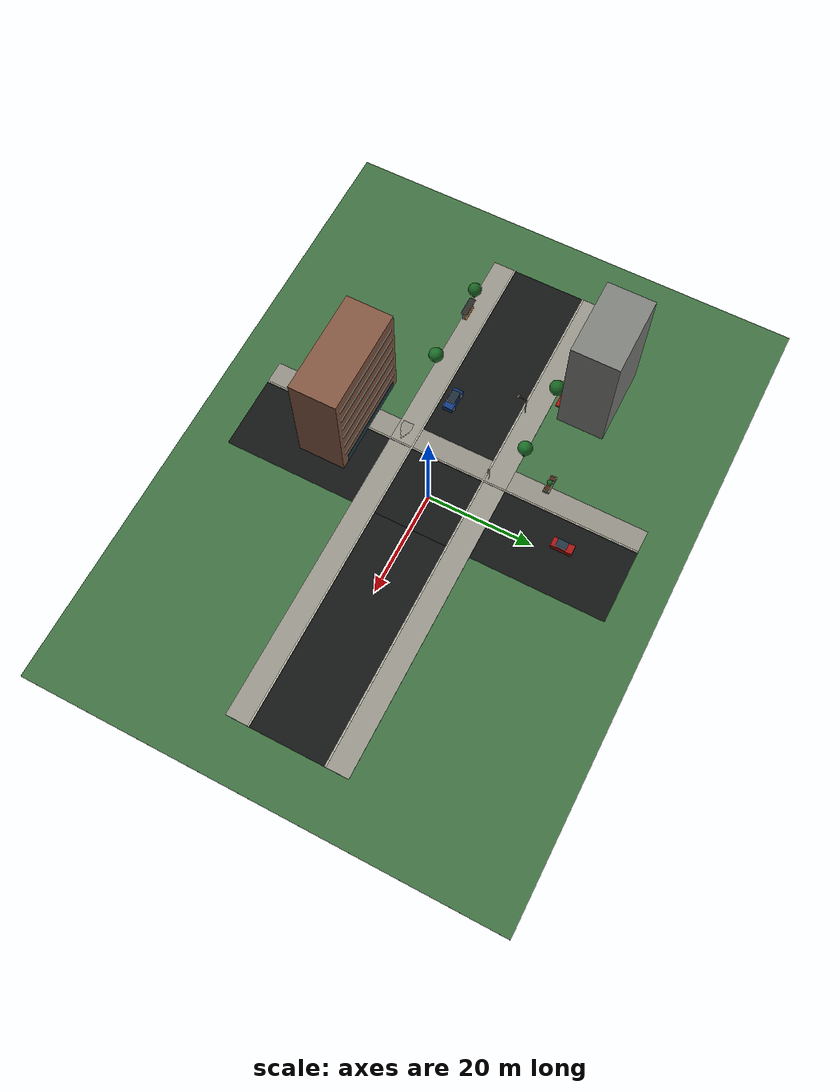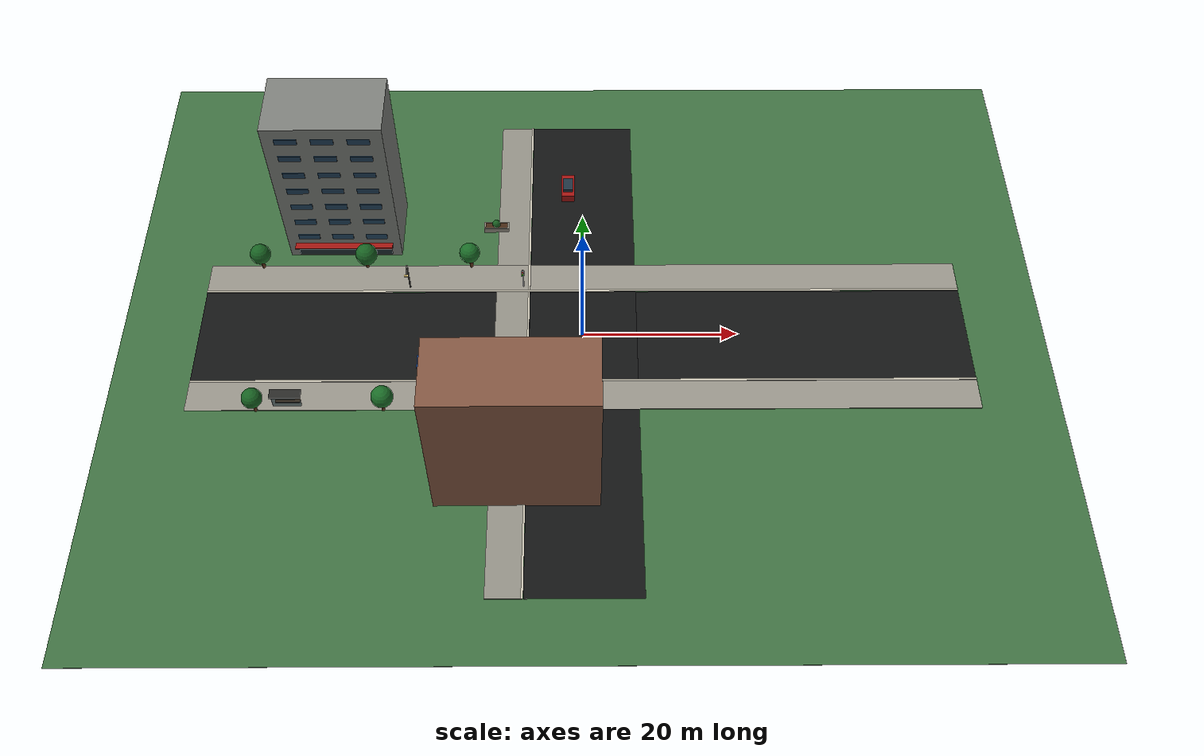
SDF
<sdf version="1.8">
 <world name="city_street">
  <model name="city_ground">
   <static>true</static>
   <link name="link">
    <collision name="ground_collision">
     <geometry><plane><normal>0 0 1</normal><size>120 90</size></plane></geometry>
     <surface><friction><ode><mu>0.9</mu><mu2>0.9</mu2></ode></friction></surface>
    </collision>
    <visual name="ground_visual">
     <pose>0 0 -0.012 0 0 0</pose>
     <geometry><box><size>120 90 0.024</size></box></geometry>
     <material>
      <ambient>0.21 0.34 0.22 1</ambient>
      <diffuse>0.24 0.43 0.25 1</diffuse>
      <specular>0.03 0.04 0.03 1</specular>
     </material>
    </visual>
   </link>
  </model>
  <model name="asphalt_main_road">
   <static>true</static>
   <link name="link">
    <visual name="asphalt">
     <geometry><box><size>100 14 0.006</size></box></geometry>
     <material>
      <ambient>0.055 0.058 0.060 1</ambient>
      <diffuse>0.075 0.078 0.080 1</diffuse>
      <specular>0.08 0.08 0.08 1</specular>
     </material>
    </visual>
   </link>
   <pose>0 0 -0.002 0 0 0</pose>
  </model>
  <model name="asphalt_cross_road">
   <static>true</static>
   <link name="link">
    <visual name="asphalt">
     <geometry><box><size>14 74 0.006</size></box></geometry>
     <material>
      <ambient>0.052 0.055 0.058 1</ambient>
      <diffuse>0.070 0.073 0.076 1</diffuse>
      <specular>0.08 0.08 0.08 1</specular>
     </material>
    </visual>
   </link>
   <pose>0 0 -0.001 0 0 0</pose>
  </model>
  <model name="north_sidewalk">
   <static>true</static>
   <link name="link">
    <collision name="collision"><geometry><box><size>100 4.2 0.12</size></box></geometry></collision>
    <visual name="concrete">
     <geometry><box><size>100 4.2 0.12</size></box></geometry>
     <material>
      <ambient>0.46 0.45 0.42 1</ambient>
      <diffuse>0.58 0.57 0.53 1</diffuse>
      <specular>0.08 0.08 0.07 1</specular>
     </material>
    </visual>
   </link>
   <pose>0 9.4 0.06 0 0 0</pose>
  </model>
  <model name="south_sidewalk">
   <static>true</static>
   <link name="link">
    <collision name="collision"><geometry><box><size>100 4.2 0.12</size></box></geometry></collision>
    <visual name="concrete">
     <geometry><box><size>100 4.2 0.12</size></box></geometry>
     <material>
      <ambient>0.46 0.45 0.42 1</ambient>
      <diffuse>0.58 0.57 0.53 1</diffuse>
      <specular>0.08 0.08 0.07 1</specular>
     </material>
    </visual>
   </link>
   <pose>0 -9.4 0.06 0 0 0</pose>
  </model>
  <model name="west_sidewalk">
   <static>true</static>
   <link name="link">
    <collision name="collision"><geometry><box><size>4.2 74 0.12</size></box></geometry></collision>
    <visual name="concrete">
     <geometry><box><size>4.2 74 0.12</size></box></geometry>
     <material>
      <ambient>0.45 0.44 0.41 1</ambient>
      <diffuse>0.56 0.55 0.51 1</diffuse>
      <specular>0.08 0.08 0.07 1</specular>
     </material>
    </visual>
   </link>
   <pose>-9.4 0 0.06 0 0 0</pose>
  </model>
  <model name="north_curb">
   <static>true</static>
   <link name="link">
    <collision name="collision"><geometry><box><size>100 0.28 0.18</size></box></geometry></collision>
    <visual name="curb">
     <geometry><box><size>100 0.28 0.18</size></box></geometry>
     <material><ambient>0.64 0.62 0.57 1</ambient><diffuse>0.76 0.74 0.68 1</diffuse></material>
    </visual>
   </link>
   <pose>0 7.16 0.09 0 0 0</pose>
  </model>
  <model name="south_curb">
   <static>true</static>
   <link name="link">
    <collision name="collision"><geometry><box><size>100 0.28 0.18</size></box></geometry></collision>
    <visual name="curb">
     <geometry><box><size>100 0.28 0.18</size></box></geometry>
     <material><ambient>0.64 0.62 0.57 1</ambient><diffuse>0.76 0.74 0.68 1</diffuse></material>
    </visual>
   </link>
   <pose>0 -7.16 0.09 0 0 0</pose>
  </model>
  <model name="west_curb">
   <static>true</static>
   <link name="link">
    <collision name="collision"><geometry><box><size>0.28 74 0.18</size></box></geometry></collision>
    <visual name="curb">
     <geometry><box><size>0.28 74 0.18</size></box></geometry>
     <material><ambient>0.64 0.62 0.57 1</ambient><diffuse>0.76 0.74 0.68 1</diffuse></material>
    </visual>
   </link>
   <pose>-7.16 0 0.09 0 0 0</pose>
  </model>
  <model name="north_west_office_tower">
   <static>true</static>
   <pose>-32 18 0 0 0 0</pose>
   <link name="link">
    <collision name="building_collision">
     <pose>0 0 12 0 0 0</pose>
     <geometry><box><size>15 9 24</size></box></geometry>
    </collision>
    <visual name="concrete_mass">
     <pose>0 0 12 0 0 0</pose>
     <geometry><box><size>15 9 24</size></box></geometry>
     <material>
      <ambient>0.36 0.37 0.36 1</ambient>
      <diffuse>0.48 0.49 0.47 1</diffuse>
      <specular>0.12 0.12 0.11 1</specular>
     </material>
    </visual>
    <visual name="front_glass_01">
     <pose>-4.5 -4.56 4 0 0 0</pose>
     <geometry><box><size>2.8 0.08 0.9</size></box></geometry>
     <material>
      <ambient>0.10 0.18 0.24 1</ambient>
      <diffuse>0.14 0.28 0.38 1</diffuse>
      <specular>0.65 0.72 0.78 1</specular>
     </material>
    </visual>
    <visual name="front_glass_02">
     <pose>0 -4.56 4 0 0 0</pose>
     <geometry><box><size>2.8 0.08 0.9</size></box></geometry>
     <material>
      <ambient>0.10 0.18 0.24 1</ambient>
      <diffuse>0.14 0.28 0.38 1</diffuse>
      <specular>0.65 0.72 0.78 1</specular>
     </material>
    </visual>
    <visual name="front_glass_03">
     <pose>4.5 -4.56 4 0 0 0</pose>
     <geometry><box><size>2.8 0.08 0.9</size></box></geometry>
     <material>
      <ambient>0.10 0.18 0.24 1</ambient>
      <diffuse>0.14 0.28 0.38 1</diffuse>
      <specular>0.65 0.72 0.78 1</specular>
     </material>
    </visual>
    <visual name="front_glass_04">
     <pose>-4.5 -4.56 7 0 0 0</pose>
     <geometry><box><size>2.8 0.08 0.9</size></box></geometry>
     <material>
      <ambient>0.09 0.17 0.23 1</ambient>
      <diffuse>0.13 0.26 0.36 1</diffuse>
      <specular>0.62 0.70 0.76 1</specular>
     </material>
    </visual>
    <visual name="front_glass_05">
     <pose>0 -4.56 7 0 0 0</pose>
     <geometry><box><size>2.8 0.08 0.9</size></box></geometry>
     <material>
      <ambient>0.09 0.17 0.23 1</ambient>
      <diffuse>0.13 0.26 0.36 1</diffuse>
      <specular>0.62 0.70 0.76 1</specular>
     </material>
    </visual>
    <visual name="front_glass_06">
     <pose>4.5 -4.56 7 0 0 0</pose>
     <geometry><box><size>2.8 0.08 0.9</size></box></geometry>
     <material>
      <ambient>0.09 0.17 0.23 1</ambient>
      <diffuse>0.13 0.26 0.36 1</diffuse>
      <specular>0.62 0.70 0.76 1</specular>
     </material>
    </visual>
    <visual name="front_glass_07">
     <pose>-4.5 -4.56 10 0 0 0</pose>
     <geometry><box><size>2.8 0.08 0.9</size></box></geometry>
     <material>
      <ambient>0.09 0.17 0.23 1</ambient>
      <diffuse>0.13 0.26 0.36 1</diffuse>
      <specular>0.62 0.70 0.76 1</specular>
     </material>
    </visual>
    <visual name="front_glass_08">
     <pose>0 -4.56 10 0 0 0</pose>
     <geometry><box><size>2.8 0.08 0.9</size></box></geometry>
     <material>
      <ambient>0.09 0.17 0.23 1</ambient>
      <diffuse>0.13 0.26 0.36 1</diffuse>
      <specular>0.62 0.70 0.76 1</specular>
     </material>
    </visual>
    <visual name="front_glass_09">
     <pose>4.5 -4.56 10 0 0 0</pose>
     <geometry><box><size>2.8 0.08 0.9</size></box></geometry>
     <material>
      <ambient>0.09 0.17 0.23 1</ambient>
      <diffuse>0.13 0.26 0.36 1</diffuse>
      <specular>0.62 0.70 0.76 1</specular>
     </material>
    </visual>
    <visual name="front_glass_10">
     <pose>-4.5 -4.56 13 0 0 0</pose>
     <geometry><box><size>2.8 0.08 0.9</size></box></geometry>
     <material>
      <ambient>0.08 0.16 0.22 1</ambient>
      <diffuse>0.12 0.24 0.34 1</diffuse>
      <specular>0.58 0.68 0.75 1</specular>
     </material>
    </visual>
    <visual name="front_glass_11">
     <pose>0 -4.56 13 0 0 0</pose>
     <geometry><box><size>2.8 0.08 0.9</size></box></geometry>
     <material>
      <ambient>0.08 0.16 0.22 1</ambient>
      <diffuse>0.12 0.24 0.34 1</diffuse>
      <specular>0.58 0.68 0.75 1</specular>
     </material>
    </visual>
    <visual name="front_glass_12">
     <pose>4.5 -4.56 13 0 0 0</pose>
     <geometry><box><size>2.8 0.08 0.9</size></box></geometry>
     <material>
      <ambient>0.08 0.16 0.22 1</ambient>
      <diffuse>0.12 0.24 0.34 1</diffuse>
      <specular>0.58 0.68 0.75 1</specular>
     </material>
    </visual>
    <visual name="front_glass_13">
     <pose>-4.5 -4.56 16 0 0 0</pose>
     <geometry><box><size>2.8 0.08 0.9</size></box></geometry>
     <material>
      <ambient>0.08 0.16 0.22 1</ambient>
      <diffuse>0.12 0.24 0.34 1</diffuse>
      <specular>0.58 0.68 0.75 1</specular>
     </material>
    </visual>
    <visual name="front_glass_14">
     <pose>0 -4.56 16 0 0 0</pose>
     <geometry><box><size>2.8 0.08 0.9</size></box></geometry>
     <material>
      <ambient>0.08 0.16 0.22 1</ambient>
      <diffuse>0.12 0.24 0.34 1</diffuse>
      <specular>0.58 0.68 0.75 1</specular>
     </material>
    </visual>
    <visual name="front_glass_15">
     <pose>4.5 -4.56 16 0 0 0</pose>
     <geometry><box><size>2.8 0.08 0.9</size></box></geometry>
     <material>
      <ambient>0.08 0.16 0.22 1</ambient>
      <diffuse>0.12 0.24 0.34 1</diffuse>
      <specular>0.58 0.68 0.75 1</specular>
     </material>
    </visual>
    <visual name="front_glass_16">
     <pose>-4.5 -4.56 19 0 0 0</pose>
     <geometry><box><size>2.8 0.08 0.9</size></box></geometry>
     <material>
      <ambient>0.08 0.16 0.22 1</ambient>
      <diffuse>0.12 0.24 0.34 1</diffuse>
      <specular>0.58 0.68 0.75 1</specular>
     </material>
    </visual>
    <visual name="front_glass_17">
     <pose>0 -4.56 19 0 0 0</pose>
     <geometry><box><size>2.8 0.08 0.9</size></box></geometry>
     <material>
      <ambient>0.08 0.16 0.22 1</ambient>
      <diffuse>0.12 0.24 0.34 1</diffuse>
      <specular>0.58 0.68 0.75 1</specular>
     </material>
    </visual>
    <visual name="front_glass_18">
     <pose>4.5 -4.56 19 0 0 0</pose>
     <geometry><box><size>2.8 0.08 0.9</size></box></geometry>
     <material>
      <ambient>0.08 0.16 0.22 1</ambient>
      <diffuse>0.12 0.24 0.34 1</diffuse>
      <specular>0.58 0.68 0.75 1</specular>
     </material>
    </visual>
    <visual name="front_glass_19">
     <pose>-4.5 -4.56 22 0 0 0</pose>
     <geometry><box><size>2.8 0.08 0.9</size></box></geometry>
     <material>
      <ambient>0.08 0.16 0.22 1</ambient>
      <diffuse>0.12 0.24 0.34 1</diffuse>
      <specular>0.58 0.68 0.75 1</specular>
     </material>
    </visual>
    <visual name="front_glass_20">
     <pose>0 -4.56 22 0 0 0</pose>
     <geometry><box><size>2.8 0.08 0.9</size></box></geometry>
     <material>
      <ambient>0.08 0.16 0.22 1</ambient>
      <diffuse>0.12 0.24 0.34 1</diffuse>
      <specular>0.58 0.68 0.75 1</specular>
     </material>
    </visual>
    <visual name="front_glass_21">
     <pose>4.5 -4.56 22 0 0 0</pose>
     <geometry><box><size>2.8 0.08 0.9</size></box></geometry>
     <material>
      <ambient>0.08 0.16 0.22 1</ambient>
      <diffuse>0.12 0.24 0.34 1</diffuse>
      <specular>0.58 0.68 0.75 1</specular>
     </material>
    </visual>
    <visual name="shopfront">
     <pose>0 -4.62 1.35 0 0 0</pose>
     <geometry><box><size>12.5 0.10 1.9</size></box></geometry>
     <material>
      <ambient>0.08 0.11 0.13 1</ambient>
      <diffuse>0.12 0.18 0.20 1</diffuse>
      <specular>0.80 0.82 0.82 1</specular>
     </material>
    </visual>
    <visual name="awning">
     <pose>0 -5.05 2.55 0 0 0</pose>
     <geometry><box><size>13.0 0.9 0.25</size></box></geometry>
     <material><ambient>0.42 0.05 0.04 1</ambient><diffuse>0.62 0.08 0.06 1</diffuse></material>
    </visual>
   </link>
  </model>
  <model name="south_mid_apartment_block">
   <static>true</static>
   <pose>-8 -20.5 0 0 0 0</pose>
   <link name="link">
    <collision name="collision">
     <pose>0 0 11 0 0 0</pose>
     <geometry><box><size>20 9 22</size></box></geometry>
    </collision>
    <visual name="brick_mass">
     <pose>0 0 11 0 0 0</pose>
     <geometry><box><size>20 9 22</size></box></geometry>
     <material>
      <ambient>0.37 0.24 0.18 1</ambient>
      <diffuse>0.50 0.33 0.25 1</diffuse>
      <specular>0.06 0.05 0.04 1</specular>
     </material>
    </visual>
    <visual name="balcony_band_01">
     <pose>0 4.56 4 0 0 0</pose>
     <geometry><box><size>18 0.12 0.35</size></box></geometry>
     <material><ambient>0.75 0.74 0.68 1</ambient><diffuse>0.85 0.84 0.78 1</diffuse></material>
    </visual>
    <visual name="balcony_band_02">
     <pose>0 4.56 7 0 0 0</pose>
     <geometry><box><size>18 0.12 0.35</size></box></geometry>
     <material><ambient>0.75 0.74 0.68 1</ambient><diffuse>0.85 0.84 0.78 1</diffuse></material>
    </visual>
    <visual name="balcony_band_03">
     <pose>0 4.56 10 0 0 0</pose>
     <geometry><box><size>18 0.12 0.35</size></box></geometry>
     <material><ambient>0.75 0.74 0.68 1</ambient><diffuse>0.85 0.84 0.78 1</diffuse></material>
    </visual>
    <visual name="balcony_band_04">
     <pose>0 4.56 13 0 0 0</pose>
     <geometry><box><size>18 0.12 0.35</size></box></geometry>
     <material><ambient>0.75 0.74 0.68 1</ambient><diffuse>0.85 0.84 0.78 1</diffuse></material>
    </visual>
    <visual name="balcony_band_05">
     <pose>0 4.56 16 0 0 0</pose>
     <geometry><box><size>18 0.12 0.35</size></box></geometry>
     <material><ambient>0.75 0.74 0.68 1</ambient><diffuse>0.85 0.84 0.78 1</diffuse></material>
    </visual>
    <visual name="balcony_band_06">
     <pose>0 4.56 19 0 0 0</pose>
     <geometry><box><size>18 0.12 0.35</size></box></geometry>
     <material><ambient>0.75 0.74 0.68 1</ambient><diffuse>0.85 0.84 0.78 1</diffuse></material>
    </visual>
    <visual name="shop_windows">
     <pose>0 4.62 1.4 0 0 0</pose>
     <geometry><box><size>17 0.10 1.8</size></box></geometry>
     <material>
      <ambient>0.08 0.13 0.16 1</ambient>
      <diffuse>0.12 0.22 0.26 1</diffuse>
      <specular>0.65 0.70 0.72 1</specular>
     </material>
    </visual>
   </link>
  </model>
  <model name="tree_north_01">
   <static>true</static>
   <pose>-43 11.4 0 0 0 0</pose>
   <link name="link">
    <collision name="trunk_collision">
     <pose>0 0 1.05 0 0 0</pose>
     <geometry><cylinder><radius>0.22</radius><length>2.1</length></cylinder></geometry>
    </collision>
    <visual name="trunk">
     <pose>0 0 1.05 0 0 0</pose>
     <geometry><cylinder><radius>0.22</radius><length>2.1</length></cylinder></geometry>
     <material><ambient>0.24 0.13 0.07 1</ambient><diffuse>0.36 0.20 0.10 1</diffuse></material>
    </visual>
    <visual name="canopy">
     <pose>0 0 2.85 0 0 0</pose>
     <geometry><sphere><radius>1.35</radius></sphere></geometry>
     <material>
      <ambient>0.05 0.24 0.08 1</ambient>
      <diffuse>0.09 0.38 0.13 1</diffuse>
      <specular>0.03 0.06 0.03 1</specular>
     </material>
    </visual>
   </link>
  </model>
  <model name="tree_north_02">
   <static>true</static>
   <pose>-29 11.4 0 0 0 0</pose>
   <link name="link">
    <collision name="trunk_collision">
     <pose>0 0 1.05 0 0 0</pose>
     <geometry><cylinder><radius>0.22</radius><length>2.1</length></cylinder></geometry>
    </collision>
    <visual name="trunk">
     <pose>0 0 1.05 0 0 0</pose>
     <geometry><cylinder><radius>0.22</radius><length>2.1</length></cylinder></geometry>
     <material><ambient>0.24 0.13 0.07 1</ambient><diffuse>0.36 0.20 0.10 1</diffuse></material>
    </visual>
    <visual name="canopy">
     <pose>0.15 -0.1 2.85 0 0 0</pose>
     <geometry><sphere><radius>1.45</radius></sphere></geometry>
     <material><ambient>0.05 0.24 0.08 1</ambient><diffuse>0.09 0.38 0.13 1</diffuse></material>
    </visual>
   </link>
  </model>
  <model name="tree_north_03">
   <static>true</static>
   <pose>-15 11.4 0 0 0 0</pose>
   <link name="link">
    <collision name="trunk_collision">
     <pose>0 0 1.05 0 0 0</pose>
     <geometry><cylinder><radius>0.22</radius><length>2.1</length></cylinder></geometry>
    </collision>
    <visual name="trunk">
     <pose>0 0 1.05 0 0 0</pose>
     <geometry><cylinder><radius>0.22</radius><length>2.1</length></cylinder></geometry>
     <material><ambient>0.24 0.13 0.07 1</ambient><diffuse>0.36 0.20 0.10 1</diffuse></material>
    </visual>
    <visual name="canopy">
     <pose>-0.1 0.05 2.9 0 0 0</pose>
     <geometry><sphere><radius>1.35</radius></sphere></geometry>
     <material><ambient>0.06 0.26 0.09 1</ambient><diffuse>0.10 0.42 0.15 1</diffuse></material>
    </visual>
   </link>
  </model>
  <model name="tree_south_01">
   <static>true</static>
   <pose>-41 -11.4 0 0 0 0</pose>
   <link name="link">
    <collision name="trunk_collision">
     <pose>0 0 1.05 0 0 0</pose>
     <geometry><cylinder><radius>0.22</radius><length>2.1</length></cylinder></geometry>
    </collision>
    <visual name="trunk">
     <pose>0 0 1.05 0 0 0</pose>
     <geometry><cylinder><radius>0.22</radius><length>2.1</length></cylinder></geometry>
     <material><ambient>0.24 0.13 0.07 1</ambient><diffuse>0.36 0.20 0.10 1</diffuse></material>
    </visual>
    <visual name="canopy">
     <pose>0 0 2.75 0 0 0</pose>
     <geometry><sphere><radius>1.30</radius></sphere></geometry>
     <material><ambient>0.05 0.24 0.08 1</ambient><diffuse>0.09 0.38 0.13 1</diffuse></material>
    </visual>
   </link>
  </model>
  <model name="tree_south_02">
   <static>true</static>
   <pose>-25 -11.4 0 0 0 0</pose>
   <link name="link">
    <collision name="trunk_collision">
     <pose>0 0 1.05 0 0 0</pose>
     <geometry><cylinder><radius>0.22</radius><length>2.1</length></cylinder></geometry>
    </collision>
    <visual name="trunk">
     <pose>0 0 1.05 0 0 0</pose>
     <geometry><cylinder><radius>0.22</radius><length>2.1</length></cylinder></geometry>
     <material><ambient>0.24 0.13 0.07 1</ambient><diffuse>0.36 0.20 0.10 1</diffuse></material>
    </visual>
    <visual name="canopy">
     <pose>0.1 0.05 2.9 0 0 0</pose>
     <geometry><sphere><radius>1.4</radius></sphere></geometry>
     <material><ambient>0.06 0.26 0.09 1</ambient><diffuse>0.10 0.42 0.15 1</diffuse></material>
    </visual>
   </link>
  </model>
  <model name="parked_blue_sedan">
   <static>true</static>
   <pose>-19 -4.85 0.04 0 0 0</pose>
   <link name="link">
    <collision name="body_collision">
     <pose>0 0 0.55 0 0 0</pose>
     <geometry><box><size>4.4 1.9 1.1</size></box></geometry>
    </collision>
    <visual name="body">
     <pose>0 0 0.55 0 0 0</pose>
     <geometry><box><size>4.4 1.9 1.1</size></box></geometry>
     <material>
      <ambient>0.04 0.12 0.26 1</ambient>
      <diffuse>0.06 0.22 0.48 1</diffuse>
      <specular>0.35 0.38 0.42 1</specular>
     </material>
    </visual>
    <visual name="cabin">
     <pose>-0.25 0 1.25 0 0 0</pose>
     <geometry><box><size>2.4 1.55 0.8</size></box></geometry>
     <material>
      <ambient>0.08 0.11 0.13 1</ambient>
      <diffuse>0.12 0.17 0.20 1</diffuse>
      <specular>0.70 0.74 0.78 1</specular>
     </material>
    </visual>
    <visual name="wheel_fl">
     <pose>-1.45 -1.02 0.28 1.5708 0 0</pose>
     <geometry><cylinder><radius>0.34</radius><length>0.25</length></cylinder></geometry>
     <material><ambient>0.02 0.02 0.02 1</ambient><diffuse>0.03 0.03 0.03 1</diffuse></material>
    </visual>
    <visual name="wheel_fr">
     <pose>1.45 -1.02 0.28 1.5708 0 0</pose>
     <geometry><cylinder><radius>0.34</radius><length>0.25</length></cylinder></geometry>
     <material><ambient>0.02 0.02 0.02 1</ambient><diffuse>0.03 0.03 0.03 1</diffuse></material>
    </visual>
    <visual name="wheel_rl">
     <pose>-1.45 1.02 0.28 1.5708 0 0</pose>
     <geometry><cylinder><radius>0.34</radius><length>0.25</length></cylinder></geometry>
     <material><ambient>0.02 0.02 0.02 1</ambient><diffuse>0.03 0.03 0.03 1</diffuse></material>
    </visual>
    <visual name="wheel_rr">
     <pose>1.45 1.02 0.28 1.5708 0 0</pose>
     <geometry><cylinder><radius>0.34</radius><length>0.25</length></cylinder></geometry>
     <material><ambient>0.02 0.02 0.02 1</ambient><diffuse>0.03 0.03 0.03 1</diffuse></material>
    </visual>
   </link>
  </model>
  <model name="red_compact_car">
   <static>true</static>
   <pose>-2 25 0.04 0 0 1.5708</pose>
   <link name="link">
    <collision name="body_collision">
     <pose>0 0 0.52 0 0 0</pose>
     <geometry><box><size>4.0 1.8 1.04</size></box></geometry>
    </collision>
    <visual name="body">
     <pose>0 0 0.52 0 0 0</pose>
     <geometry><box><size>4.0 1.8 1.04</size></box></geometry>
     <material>
      <ambient>0.36 0.04 0.03 1</ambient>
      <diffuse>0.62 0.07 0.06 1</diffuse>
      <specular>0.36 0.32 0.32 1</specular>
     </material>
    </visual>
    <visual name="cabin">
     <pose>-0.15 0 1.18 0 0 0</pose>
     <geometry><box><size>2.0 1.42 0.72</size></box></geometry>
     <material>
      <ambient>0.08 0.12 0.15 1</ambient>
      <diffuse>0.12 0.20 0.25 1</diffuse>
      <specular>0.70 0.74 0.78 1</specular>
     </material>
    </visual>
   </link>
  </model>
  <model name="streetlight_north_west">
   <static>true</static>
   <pose>-23 7.8 0 0 0 0</pose>
   <link name="link">
    <collision name="pole_collision">
     <pose>0 0 2.4 0 0 0</pose>
     <geometry><cylinder><radius>0.08</radius><length>4.8</length></cylinder></geometry>
    </collision>
    <visual name="pole">
     <pose>0 0 2.4 0 0 0</pose>
     <geometry><cylinder><radius>0.08</radius><length>4.8</length></cylinder></geometry>
     <material>
      <ambient>0.23 0.23 0.22 1</ambient>
      <diffuse>0.36 0.36 0.34 1</diffuse>
      <specular>0.30 0.30 0.28 1</specular>
     </material>
    </visual>
    <visual name="arm">
     <pose>0 -0.8 4.75 0 0 0</pose>
     <geometry><box><size>0.12 1.6 0.10</size></box></geometry>
     <material><ambient>0.23 0.23 0.22 1</ambient><diffuse>0.36 0.36 0.34 1</diffuse></material>
    </visual>
    <visual name="lamp_head">
     <pose>0 -1.6 4.65 0 0 0</pose>
     <geometry><box><size>0.55 0.25 0.15</size></box></geometry>
     <material>
      <ambient>0.95 0.76 0.42 1</ambient>
      <diffuse>1.0 0.86 0.52 1</diffuse>
      <emissive>0.9 0.65 0.32 1</emissive>
     </material>
    </visual>
    <light name="warm_pool" type="point">
     <pose>0 -1.6 4.6 0 0 0</pose>
     <diffuse>1.0 0.78 0.45 1</diffuse>
     <specular>0.3 0.22 0.12 1</specular>
     <attenuation>
      <range>18</range>
      <constant>0.7</constant>
      <linear>0.08</linear>
      <quadratic>0.01</quadratic>
     </attenuation>
     <cast_shadows>false</cast_shadows>
    </light>
   </link>
  </model>
  <model name="traffic_light_north_west_corner">
   <static>true</static>
   <pose>-7.9 7.9 0 0 0 0</pose>
   <link name="link">
    <collision name="pole_collision">
     <pose>0 0 1.8 0 0 0</pose>
     <geometry><cylinder><radius>0.07</radius><length>3.6</length></cylinder></geometry>
    </collision>
    <visual name="pole">
     <pose>0 0 1.8 0 0 0</pose>
     <geometry><cylinder><radius>0.07</radius><length>3.6</length></cylinder></geometry>
     <material><ambient>0.08 0.08 0.08 1</ambient><diffuse>0.12 0.12 0.12 1</diffuse></material>
    </visual>
    <visual name="signal_box">
     <pose>0 -0.25 3.25 0 0 0</pose>
     <geometry><box><size>0.45 0.22 0.95</size></box></geometry>
     <material><ambient>0.03 0.03 0.03 1</ambient><diffuse>0.05 0.05 0.05 1</diffuse></material>
    </visual>
    <visual name="red_lens">
     <pose>0 -0.38 3.55 0 0 0</pose>
     <geometry><sphere><radius>0.10</radius></sphere></geometry>
     <material>
      <ambient>0.55 0.02 0.01 1</ambient>
      <diffuse>0.95 0.04 0.02 1</diffuse>
      <emissive>0.65 0.02 0.01 1</emissive>
     </material>
    </visual>
    <visual name="yellow_lens">
     <pose>0 -0.38 3.25 0 0 0</pose>
     <geometry><sphere><radius>0.10</radius></sphere></geometry>
     <material><ambient>0.62 0.45 0.02 1</ambient><diffuse>0.95 0.72 0.04 1</diffuse></material>
    </visual>
    <visual name="green_lens">
     <pose>0 -0.38 2.95 0 0 0</pose>
     <geometry><sphere><radius>0.10</radius></sphere></geometry>
     <material><ambient>0.02 0.35 0.05 1</ambient><diffuse>0.04 0.75 0.10 1</diffuse></material>
    </visual>
   </link>
  </model>
  <model name="bus_stop_shelter">
   <static>true</static>
   <pose>-37 -10.8 0.16 0 0 0</pose>
   <link name="link">
    <collision name="bench_collision">
     <pose>0 0 0.45 0 0 0</pose>
     <geometry><box><size>3.4 0.6 0.9</size></box></geometry>
    </collision>
    <visual name="back_glass">
     <pose>0 -0.25 1.45 0 0 0</pose>
     <geometry><box><size>3.6 0.08 2.2</size></box></geometry>
     <material>
      <ambient>0.10 0.16 0.18 0.65</ambient>
      <diffuse>0.16 0.27 0.30 0.65</diffuse>
      <specular>0.75 0.78 0.80 1</specular>
     </material>
    </visual>
    <visual name="roof">
     <pose>0 0 2.55 0 0 0</pose>
     <geometry><box><size>3.9 1.25 0.16</size></box></geometry>
     <material><ambient>0.10 0.10 0.10 1</ambient><diffuse>0.16 0.16 0.15 1</diffuse></material>
    </visual>
    <visual name="bench_seat">
     <pose>0 0.25 0.55 0 0 0</pose>
     <geometry><box><size>3.1 0.45 0.18</size></box></geometry>
     <material><ambient>0.30 0.18 0.08 1</ambient><diffuse>0.48 0.28 0.12 1</diffuse></material>
    </visual>
   </link>
  </model>
  <model name="planter_west">
   <static>true</static>
   <pose>-11.8 18 0.05 0 0 0</pose>
   <link name="link">
    <collision name="collision">
     <pose>0 0 0.35 0 0 0</pose>
     <geometry><box><size>3.4 1.2 0.7</size></box></geometry>
    </collision>
    <visual name="concrete_box">
     <pose>0 0 0.35 0 0 0</pose>
     <geometry><box><size>3.4 1.2 0.7</size></box></geometry>
     <material><ambient>0.44 0.42 0.38 1</ambient><diffuse>0.56 0.54 0.49 1</diffuse></material>
    </visual>
    <visual name="soil">
     <pose>0 0 0.75 0 0 0</pose>
     <geometry><box><size>3.0 0.85 0.08</size></box></geometry>
     <material><ambient>0.18 0.10 0.05 1</ambient><diffuse>0.27 0.16 0.08 1</diffuse></material>
    </visual>
    <visual name="shrub">
     <pose>0 0 1.05 0 0 0</pose>
     <geometry><sphere><radius>0.55</radius></sphere></geometry>
     <material><ambient>0.05 0.22 0.07 1</ambient><diffuse>0.09 0.36 0.12 1</diffuse></material>
    </visual>
   </link>
  </model>
 </world>
</sdf>
